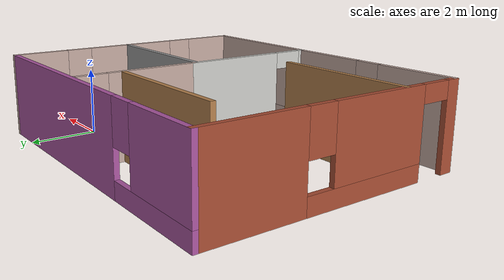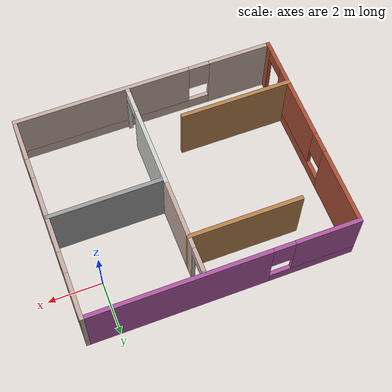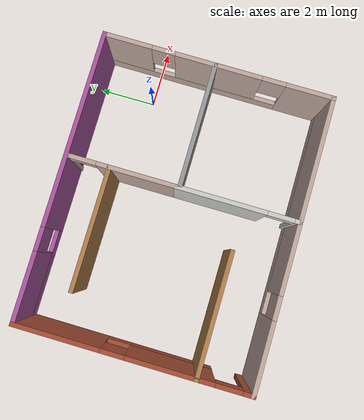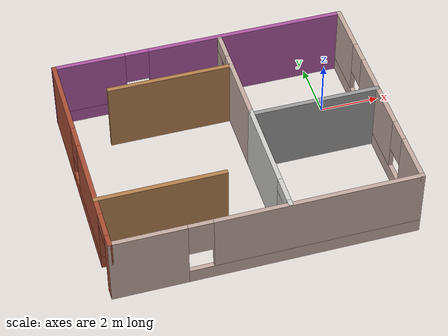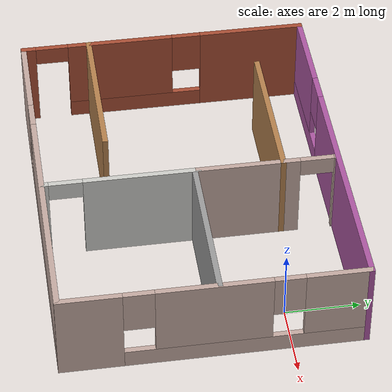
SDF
<?xml version='1.0'?>
<sdf version='1.6'>
  <model name='my_building'>
    <pose frame=''>-3.76246 -2.0066 0 0 -0 0</pose>
    <link name='Wall_15'>
      <collision name='Wall_15_Collision'>
        <geometry>
          <box>
            <size>4.25 0.15 2.5</size>
          </box>
        </geometry>
        <pose frame=''>0 0 1.25 0 -0 0</pose>
      </collision>
      <visual name='Wall_15_Visual'>
        <pose frame=''>0 0 1.25 0 -0 0</pose>
        <geometry>
          <box>
            <size>4.25 0.15 2.5</size>
          </box>
        </geometry>
        <material>
          <script>
            <uri>file://media/materials/scripts/gazebo.material</uri>
            <name>Gazebo/Grey</name>
          </script>
          <ambient>1 1 1 1</ambient>
        </material>
        <meta>
          <layer>0</layer>
        </meta>
      </visual>
      <pose frame=''>2.84042 0.103421 0 0 -0 3.14159</pose>
    </link>
    <link name='Wall_21'>
      <pose frame=''>0.686687 -1.84918 0 0 -0 1.5708</pose>
      <visual name='Wall_21_Visual_0'>
        <pose frame=''>-2.0108 0 1.25 0 -0 0</pose>
        <geometry>
          <box>
            <size>0.228407 0.15 2.5</size>
          </box>
        </geometry>
        <material>
          <script>
            <uri>file://media/materials/scripts/gazebo.material</uri>
            <name>Gazebo/CeilingTiled</name>
          </script>
          <ambient>0.760784 0.662745 0.627451 1</ambient>
        </material>
        <meta>
          <layer>0</layer>
        </meta>
      </visual>
      <collision name='Wall_21_Collision_0'>
        <geometry>
          <box>
            <size>0.228407 0.15 2.5</size>
          </box>
        </geometry>
        <pose frame=''>-2.0108 0 1.25 0 -0 0</pose>
      </collision>
      <visual name='Wall_21_Visual_1'>
        <pose frame=''>0.564203 0 1.25 0 -0 0</pose>
        <geometry>
          <box>
            <size>3.12159 0.15 2.5</size>
          </box>
        </geometry>
        <material>
          <script>
            <uri>file://media/materials/scripts/gazebo.material</uri>
            <name>Gazebo/CeilingTiled</name>
          </script>
          <ambient>0.760784 0.662745 0.627451 1</ambient>
        </material>
        <meta>
          <layer>0</layer>
        </meta>
      </visual>
      <collision name='Wall_21_Collision_1'>
        <geometry>
          <box>
            <size>3.12159 0.15 2.5</size>
          </box>
        </geometry>
        <pose frame=''>0.564203 0 1.25 0 -0 0</pose>
      </collision>
      <visual name='Wall_21_Visual_2'>
        <pose frame=''>-1.44659 0 2.25 0 -0 0</pose>
        <geometry>
          <box>
            <size>0.9 0.15 0.5</size>
          </box>
        </geometry>
        <material>
          <script>
            <uri>file://media/materials/scripts/gazebo.material</uri>
            <name>Gazebo/CeilingTiled</name>
          </script>
          <ambient>0.760784 0.662745 0.627451 1</ambient>
        </material>
        <meta>
          <layer>0</layer>
        </meta>
      </visual>
      <collision name='Wall_21_Collision_2'>
        <geometry>
          <box>
            <size>0.9 0.15 0.5</size>
          </box>
        </geometry>
        <pose frame=''>-1.44659 0 2.25 0 -0 0</pose>
      </collision>
    </link>
    <link name='Wall_22'>
      <pose frame=''>0.686687 2.00082 0 0 -0 1.5708</pose>
      <visual name='Wall_22_Visual_0'>
        <pose frame=''>-0.482 0 1.25 0 -0 0</pose>
        <geometry>
          <box>
            <size>2.786 0.15 2.5</size>
          </box>
        </geometry>
        <material>
          <script>
            <uri>file://media/materials/scripts/gazebo.material</uri>
            <name>Gazebo/Grey</name>
          </script>
          <ambient>0.760784 0.662745 0.627451 1</ambient>
        </material>
        <meta>
          <layer>0</layer>
        </meta>
      </visual>
      <collision name='Wall_22_Collision_0'>
        <geometry>
          <box>
            <size>2.786 0.15 2.5</size>
          </box>
        </geometry>
        <pose frame=''>-0.482 0 1.25 0 -0 0</pose>
      </collision>
      <visual name='Wall_22_Visual_1'>
        <pose frame=''>1.843 0 1.25 0 -0 0</pose>
        <geometry>
          <box>
            <size>0.064001 0.15 2.5</size>
          </box>
        </geometry>
        <material>
          <script>
            <uri>file://media/materials/scripts/gazebo.material</uri>
            <name>Gazebo/Grey</name>
          </script>
          <ambient>0.760784 0.662745 0.627451 1</ambient>
        </material>
        <meta>
          <layer>0</layer>
        </meta>
      </visual>
      <collision name='Wall_22_Collision_1'>
        <geometry>
          <box>
            <size>0.064001 0.15 2.5</size>
          </box>
        </geometry>
        <pose frame=''>1.843 0 1.25 0 -0 0</pose>
      </collision>
      <visual name='Wall_22_Visual_2'>
        <pose frame=''>1.361 0 2.25 0 -0 0</pose>
        <geometry>
          <box>
            <size>0.9 0.15 0.5</size>
          </box>
        </geometry>
        <material>
          <script>
            <uri>file://media/materials/scripts/gazebo.material</uri>
            <name>Gazebo/Grey</name>
          </script>
          <ambient>0.760784 0.662745 0.627451 1</ambient>
        </material>
        <meta>
          <layer>0</layer>
        </meta>
      </visual>
      <collision name='Wall_22_Collision_2'>
        <geometry>
          <box>
            <size>0.9 0.15 0.5</size>
          </box>
        </geometry>
        <pose frame=''>1.361 0 2.25 0 -0 0</pose>
      </collision>
    </link>
    <link name='Wall_24'>
      <collision name='Wall_24_Collision'>
        <geometry>
          <box>
            <size>4.25 0.15 2.5</size>
          </box>
        </geometry>
        <pose frame=''>0 0 1.25 0 -0 0</pose>
      </collision>
      <visual name='Wall_24_Visual'>
        <pose frame=''>0 0 1.25 0 -0 0</pose>
        <geometry>
          <box>
            <size>4.25 0.15 2.5</size>
          </box>
        </geometry>
        <material>
          <script>
            <uri>file://media/materials/scripts/gazebo.material</uri>
            <name>Gazebo/Wood</name>
          </script>
          <ambient>1 1 1 1</ambient>
        </material>
        <meta>
          <layer>0</layer>
        </meta>
      </visual>
      <pose frame=''>-2.875 -2.08896 0 0 -0 0</pose>
    </link>
    <link name='Wall_26'>
      <collision name='Wall_26_Collision'>
        <geometry>
          <box>
            <size>4.25 0.15 2.5</size>
          </box>
        </geometry>
        <pose frame=''>0 0 1.25 0 -0 0</pose>
      </collision>
      <visual name='Wall_26_Visual'>
        <pose frame=''>0 0 1.25 0 -0 0</pose>
        <geometry>
          <box>
            <size>4.25 0.15 2.5</size>
          </box>
        </geometry>
        <material>
          <script>
            <uri>file://media/materials/scripts/gazebo.material</uri>
            <name>Gazebo/Wood</name>
          </script>
          <ambient>1 1 1 1</ambient>
        </material>
        <meta>
          <layer>0</layer>
        </meta>
      </visual>
      <pose frame=''>-1.36331 2.45671 0 0 -0 3.14159</pose>
    </link>
    <link name='Wall_3'>
      <pose frame=''>-4.925 0 0 0 0 -1.5708</pose>
      <visual name='Wall_3_Visual_0'>
        <pose frame=''>-2.5333 0 1.25 0 -0 0</pose>
        <geometry>
          <box>
            <size>2.9334 0.15 2.5</size>
          </box>
        </geometry>
        <material>
          <script>
            <uri>file://media/materials/scripts/gazebo.material</uri>
            <name>Gazebo/Bricks</name>
          </script>
          <ambient>1 1 1 1</ambient>
        </material>
        <meta>
          <layer>0</layer>
        </meta>
      </visual>
      <collision name='Wall_3_Collision_0'>
        <geometry>
          <box>
            <size>2.9334 0.15 2.5</size>
          </box>
        </geometry>
        <pose frame=''>-2.5333 0 1.25 0 -0 0</pose>
      </collision>
      <visual name='Wall_3_Visual_1'>
        <pose frame=''>3.79243 0 1.25 0 -0 0</pose>
        <geometry>
          <box>
            <size>0.415136 0.15 2.5</size>
          </box>
        </geometry>
        <material>
          <script>
            <uri>file://media/materials/scripts/gazebo.material</uri>
            <name>Gazebo/Bricks</name>
          </script>
          <ambient>1 1 1 1</ambient>
        </material>
        <meta>
          <layer>0</layer>
        </meta>
      </visual>
      <collision name='Wall_3_Collision_1'>
        <geometry>
          <box>
            <size>0.415136 0.15 2.5</size>
          </box>
        </geometry>
        <pose frame=''>3.79243 0 1.25 0 -0 0</pose>
      </collision>
      <visual name='Wall_3_Visual_2'>
        <pose frame=''>0.809131 0 0.25 0 -0 0</pose>
        <geometry>
          <box>
            <size>3.75147 0.15 0.5</size>
          </box>
        </geometry>
        <material>
          <script>
            <uri>file://media/materials/scripts/gazebo.material</uri>
            <name>Gazebo/Bricks</name>
          </script>
          <ambient>1 1 1 1</ambient>
        </material>
        <meta>
          <layer>0</layer>
        </meta>
      </visual>
      <collision name='Wall_3_Collision_2'>
        <geometry>
          <box>
            <size>3.75147 0.15 0.5</size>
          </box>
        </geometry>
        <pose frame=''>0.809131 0 0.25 0 -0 0</pose>
      </collision>
      <visual name='Wall_3_Visual_3'>
        <pose frame=''>1.20913 0 1.5 0 -0 0</pose>
        <geometry>
          <box>
            <size>2.95146 0.15 2</size>
          </box>
        </geometry>
        <material>
          <script>
            <uri>file://media/materials/scripts/gazebo.material</uri>
            <name>Gazebo/Bricks</name>
          </script>
          <ambient>1 1 1 1</ambient>
        </material>
        <meta>
          <layer>0</layer>
        </meta>
      </visual>
      <collision name='Wall_3_Collision_3'>
        <geometry>
          <box>
            <size>2.95146 0.15 2</size>
          </box>
        </geometry>
        <pose frame=''>1.20913 0 1.5 0 -0 0</pose>
      </collision>
      <visual name='Wall_3_Visual_4'>
        <pose frame=''>-0.666601 0 1.9 0 -0 0</pose>
        <geometry>
          <box>
            <size>0.8 0.15 1.2</size>
          </box>
        </geometry>
        <material>
          <script>
            <uri>file://media/materials/scripts/gazebo.material</uri>
            <name>Gazebo/Bricks</name>
          </script>
          <ambient>1 1 1 1</ambient>
        </material>
        <meta>
          <layer>0</layer>
        </meta>
      </visual>
      <collision name='Wall_3_Collision_4'>
        <geometry>
          <box>
            <size>0.8 0.15 1.2</size>
          </box>
        </geometry>
        <pose frame=''>-0.666601 0 1.9 0 -0 0</pose>
      </collision>
      <visual name='Wall_3_Visual_5'>
        <pose frame=''>3.13486 0 2.25 0 -0 0</pose>
        <geometry>
          <box>
            <size>0.9 0.15 0.5</size>
          </box>
        </geometry>
        <material>
          <script>
            <uri>file://media/materials/scripts/gazebo.material</uri>
            <name>Gazebo/Bricks</name>
          </script>
          <ambient>1 1 1 1</ambient>
        </material>
        <meta>
          <layer>0</layer>
        </meta>
      </visual>
      <collision name='Wall_3_Collision_5'>
        <geometry>
          <box>
            <size>0.9 0.15 0.5</size>
          </box>
        </geometry>
        <pose frame=''>3.13486 0 2.25 0 -0 0</pose>
      </collision>
    </link>
    <link name='Wall_6'>
      <pose frame=''>0 -3.925 0 0 -0 0</pose>
      <visual name='Wall_6_Visual_0'>
        <pose frame=''>-3.76461 0 1.25 0 -0 0</pose>
        <geometry>
          <box>
            <size>2.47079 0.15 2.5</size>
          </box>
        </geometry>
        <material>
          <script>
            <uri>file://media/materials/scripts/gazebo.material</uri>
            <name>Gazebo/Grey</name>
          </script>
          <ambient>0.760784 0.662745 0.627451 1</ambient>
        </material>
        <meta>
          <layer>0</layer>
        </meta>
      </visual>
      <collision name='Wall_6_Collision_0'>
        <geometry>
          <box>
            <size>2.47079 0.15 2.5</size>
          </box>
        </geometry>
        <pose frame=''>-3.76461 0 1.25 0 -0 0</pose>
      </collision>
      <visual name='Wall_6_Visual_1'>
        <pose frame=''>1.23539 0 0.25 0 -0 0</pose>
        <geometry>
          <box>
            <size>7.52921 0.15 0.5</size>
          </box>
        </geometry>
        <material>
          <script>
            <uri>file://media/materials/scripts/gazebo.material</uri>
            <name>Gazebo/Grey</name>
          </script>
          <ambient>0.760784 0.662745 0.627451 1</ambient>
        </material>
        <meta>
          <layer>0</layer>
        </meta>
      </visual>
      <collision name='Wall_6_Collision_1'>
        <geometry>
          <box>
            <size>7.52921 0.15 0.5</size>
          </box>
        </geometry>
        <pose frame=''>1.23539 0 0.25 0 -0 0</pose>
      </collision>
      <visual name='Wall_6_Visual_2'>
        <pose frame=''>1.63539 0 1.5 0 -0 0</pose>
        <geometry>
          <box>
            <size>6.72921 0.15 2</size>
          </box>
        </geometry>
        <material>
          <script>
            <uri>file://media/materials/scripts/gazebo.material</uri>
            <name>Gazebo/Grey</name>
          </script>
          <ambient>0.760784 0.662745 0.627451 1</ambient>
        </material>
        <meta>
          <layer>0</layer>
        </meta>
      </visual>
      <collision name='Wall_6_Collision_2'>
        <geometry>
          <box>
            <size>6.72921 0.15 2</size>
          </box>
        </geometry>
        <pose frame=''>1.63539 0 1.5 0 -0 0</pose>
      </collision>
      <visual name='Wall_6_Visual_3'>
        <pose frame=''>-2.12921 0 1.9 0 -0 0</pose>
        <geometry>
          <box>
            <size>0.8 0.15 1.2</size>
          </box>
        </geometry>
        <material>
          <script>
            <uri>file://media/materials/scripts/gazebo.material</uri>
            <name>Gazebo/Grey</name>
          </script>
          <ambient>0.760784 0.662745 0.627451 1</ambient>
        </material>
        <meta>
          <layer>0</layer>
        </meta>
      </visual>
      <collision name='Wall_6_Collision_3'>
        <geometry>
          <box>
            <size>0.8 0.15 1.2</size>
          </box>
        </geometry>
        <pose frame=''>-2.12921 0 1.9 0 -0 0</pose>
      </collision>
    </link>
    <link name='Wall_8'>
      <pose frame=''>4.925 0 0 0 -0 1.5708</pose>
      <visual name='Wall_8_Visual_0'>
        <pose frame=''>-3.15397 0 1.25 0 -0 0</pose>
        <geometry>
          <box>
            <size>1.69206 0.15 2.5</size>
          </box>
        </geometry>
        <material>
          <script>
            <uri>file://media/materials/scripts/gazebo.material</uri>
            <name>Gazebo/Grey</name>
          </script>
          <ambient>0.760784 0.662745 0.627451 1</ambient>
        </material>
        <meta>
          <layer>0</layer>
        </meta>
      </visual>
      <collision name='Wall_8_Collision_0'>
        <geometry>
          <box>
            <size>1.69206 0.15 2.5</size>
          </box>
        </geometry>
        <pose frame=''>-3.15397 0 1.25 0 -0 0</pose>
      </collision>
      <visual name='Wall_8_Visual_1'>
        <pose frame=''>0.846032 0 0.25 0 -0 0</pose>
        <geometry>
          <box>
            <size>6.30794 0.15 0.5</size>
          </box>
        </geometry>
        <material>
          <script>
            <uri>file://media/materials/scripts/gazebo.material</uri>
            <name>Gazebo/Grey</name>
          </script>
          <ambient>0.760784 0.662745 0.627451 1</ambient>
        </material>
        <meta>
          <layer>0</layer>
        </meta>
      </visual>
      <collision name='Wall_8_Collision_1'>
        <geometry>
          <box>
            <size>6.30794 0.15 0.5</size>
          </box>
        </geometry>
        <pose frame=''>0.846032 0 0.25 0 -0 0</pose>
      </collision>
      <visual name='Wall_8_Visual_2'>
        <pose frame=''>-0.01726 0 1.5 0 -0 0</pose>
        <geometry>
          <box>
            <size>2.98135 0.15 2</size>
          </box>
        </geometry>
        <material>
          <script>
            <uri>file://media/materials/scripts/gazebo.material</uri>
            <name>Gazebo/Grey</name>
          </script>
          <ambient>0.760784 0.662745 0.627451 1</ambient>
        </material>
        <meta>
          <layer>0</layer>
        </meta>
      </visual>
      <collision name='Wall_8_Collision_2'>
        <geometry>
          <box>
            <size>2.98135 0.15 2</size>
          </box>
        </geometry>
        <pose frame=''>-0.01726 0 1.5 0 -0 0</pose>
      </collision>
      <visual name='Wall_8_Visual_3'>
        <pose frame=''>3.13671 0 1.5 0 -0 0</pose>
        <geometry>
          <box>
            <size>1.72658 0.15 2</size>
          </box>
        </geometry>
        <material>
          <script>
            <uri>file://media/materials/scripts/gazebo.material</uri>
            <name>Gazebo/Grey</name>
          </script>
          <ambient>0.760784 0.662745 0.627451 1</ambient>
        </material>
        <meta>
          <layer>0</layer>
        </meta>
      </visual>
      <collision name='Wall_8_Collision_3'>
        <geometry>
          <box>
            <size>1.72658 0.15 2</size>
          </box>
        </geometry>
        <pose frame=''>3.13671 0 1.5 0 -0 0</pose>
      </collision>
      <visual name='Wall_8_Visual_4'>
        <pose frame=''>-1.90794 0 1.9 0 -0 0</pose>
        <geometry>
          <box>
            <size>0.8 0.15 1.2</size>
          </box>
        </geometry>
        <material>
          <script>
            <uri>file://media/materials/scripts/gazebo.material</uri>
            <name>Gazebo/Grey</name>
          </script>
          <ambient>0.760784 0.662745 0.627451 1</ambient>
        </material>
        <meta>
          <layer>0</layer>
        </meta>
      </visual>
      <collision name='Wall_8_Collision_4'>
        <geometry>
          <box>
            <size>0.8 0.15 1.2</size>
          </box>
        </geometry>
        <pose frame=''>-1.90794 0 1.9 0 -0 0</pose>
      </collision>
      <visual name='Wall_8_Visual_5'>
        <pose frame=''>1.87342 0 1.9 0 -0 0</pose>
        <geometry>
          <box>
            <size>0.8 0.15 1.2</size>
          </box>
        </geometry>
        <material>
          <script>
            <uri>file://media/materials/scripts/gazebo.material</uri>
            <name>Gazebo/Grey</name>
          </script>
          <ambient>0.760784 0.662745 0.627451 1</ambient>
        </material>
        <meta>
          <layer>0</layer>
        </meta>
      </visual>
      <collision name='Wall_8_Collision_5'>
        <geometry>
          <box>
            <size>0.8 0.15 1.2</size>
          </box>
        </geometry>
        <pose frame=''>1.87342 0 1.9 0 -0 0</pose>
      </collision>
    </link>
    <link name='Wall_9'>
      <pose frame=''>0 3.925 0 0 -0 3.14159</pose>
      <visual name='Wall_9_Visual_0'>
        <pose frame=''>-1.62534 0 1.25 0 -0 0</pose>
        <geometry>
          <box>
            <size>6.74933 0.15 2.5</size>
          </box>
        </geometry>
        <material>
          <script>
            <uri>file://media/materials/scripts/gazebo.material</uri>
            <name>Gazebo/Grey</name>
          </script>
          <ambient>0.666667 0.337255 0.623529 1</ambient>
        </material>
        <meta>
          <layer>0</layer>
        </meta>
      </visual>
      <collision name='Wall_9_Collision_0'>
        <geometry>
          <box>
            <size>6.74933 0.15 2.5</size>
          </box>
        </geometry>
        <pose frame=''>-1.62534 0 1.25 0 -0 0</pose>
      </collision>
      <visual name='Wall_9_Visual_1'>
        <pose frame=''>3.37466 0 0.25 0 -0 0</pose>
        <geometry>
          <box>
            <size>3.25067 0.15 0.5</size>
          </box>
        </geometry>
        <material>
          <script>
            <uri>file://media/materials/scripts/gazebo.material</uri>
            <name>Gazebo/Grey</name>
          </script>
          <ambient>0.666667 0.337255 0.623529 1</ambient>
        </material>
        <meta>
          <layer>0</layer>
        </meta>
      </visual>
      <collision name='Wall_9_Collision_1'>
        <geometry>
          <box>
            <size>3.25067 0.15 0.5</size>
          </box>
        </geometry>
        <pose frame=''>3.37466 0 0.25 0 -0 0</pose>
      </collision>
      <visual name='Wall_9_Visual_2'>
        <pose frame=''>3.77466 0 1.5 0 -0 0</pose>
        <geometry>
          <box>
            <size>2.45067 0.15 2</size>
          </box>
        </geometry>
        <material>
          <script>
            <uri>file://media/materials/scripts/gazebo.material</uri>
            <name>Gazebo/Grey</name>
          </script>
          <ambient>0.666667 0.337255 0.623529 1</ambient>
        </material>
        <meta>
          <layer>0</layer>
        </meta>
      </visual>
      <collision name='Wall_9_Collision_2'>
        <geometry>
          <box>
            <size>2.45067 0.15 2</size>
          </box>
        </geometry>
        <pose frame=''>3.77466 0 1.5 0 -0 0</pose>
      </collision>
      <visual name='Wall_9_Visual_3'>
        <pose frame=''>2.14933 0 1.9 0 -0 0</pose>
        <geometry>
          <box>
            <size>0.8 0.15 1.2</size>
          </box>
        </geometry>
        <material>
          <script>
            <uri>file://media/materials/scripts/gazebo.material</uri>
            <name>Gazebo/Grey</name>
          </script>
          <ambient>0.666667 0.337255 0.623529 1</ambient>
        </material>
        <meta>
          <layer>0</layer>
        </meta>
      </visual>
      <collision name='Wall_9_Collision_3'>
        <geometry>
          <box>
            <size>0.8 0.15 1.2</size>
          </box>
        </geometry>
        <pose frame=''>2.14933 0 1.9 0 -0 0</pose>
      </collision>
    </link>
    <static>1</static>
  </model>
</sdf>
